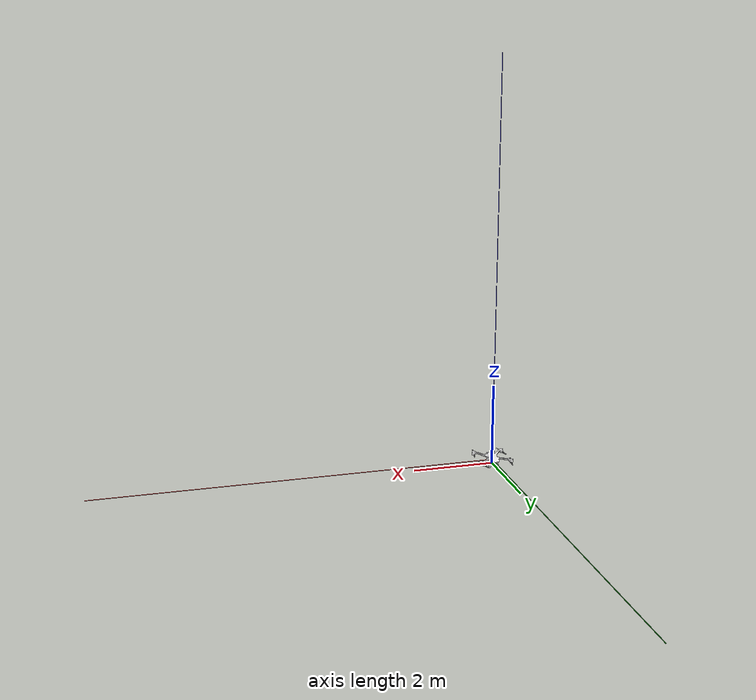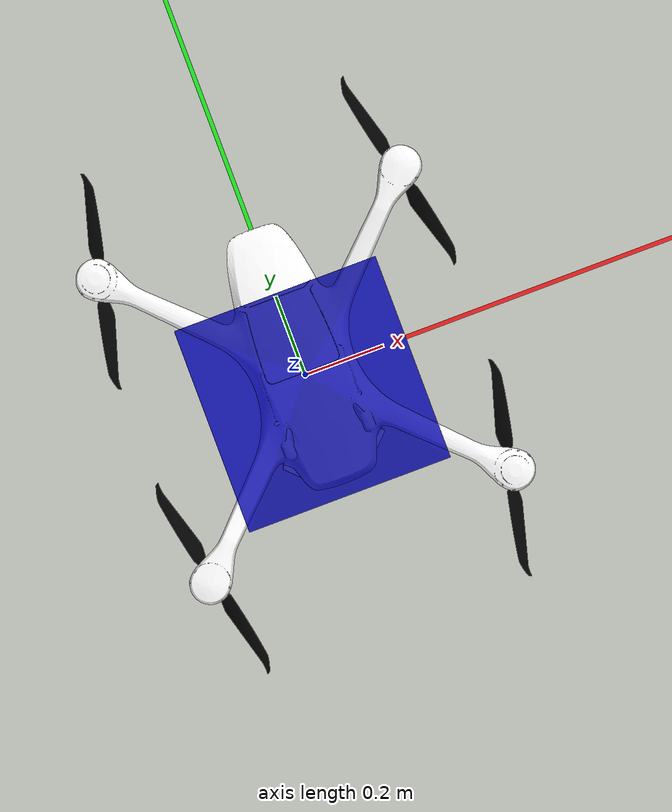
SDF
<sdf version="1.9">
 <world name="e2_runway">
  <physics name="1ms" type="ignore">
   <max_step_size>0.001</max_step_size>
   <real_time_factor>1.0</real_time_factor>
  </physics>
  <plugin filename="gz-sim-physics-system" name="gz::sim::systems::Physics"/>
  <plugin filename="gz-sim-sensors-system" name="gz::sim::systems::Sensors">
   <render_engine>ogre2</render_engine>
  </plugin>
  <plugin filename="gz-sim-user-commands-system" name="gz::sim::systems::UserCommands"/>
  <plugin filename="gz-sim-scene-broadcaster-system" name="gz::sim::systems::SceneBroadcaster"/>
  <plugin filename="gz-sim-imu-system" name="gz::sim::systems::Imu"/>
  <plugin filename="gz-sim-navsat-system" name="gz::sim::systems::NavSat"/>
  <spherical_coordinates>
   <latitude_deg>-35.363262</latitude_deg>
   <longitude_deg>149.165237</longitude_deg>
   <elevation>584</elevation>
   <heading_deg>0</heading_deg>
   <surface_model>EARTH_WGS84</surface_model>
  </spherical_coordinates>
  <light type="directional" name="sun">
   <pose>0 0 10 0 0 0</pose>
   <diffuse>0.8 0.8 0.8 1</diffuse>
   <specular>0.8 0.8 0.8 1</specular>
   <attenuation>
    <range>1000</range>
    <constant>0.9</constant>
    <linear>0.01</linear>
    <quadratic>0.001</quadratic>
   </attenuation>
   <direction>-0.5 0.1 -0.9</direction>
  </light>
  <model name="axes">
   <static>1</static>
   <link name="link">
    <visual name="r">
     <cast_shadows>0</cast_shadows>
     <pose>5 0 0.1 0 0 0</pose>
     <geometry><box><size>10 0.01 0.01</size></box></geometry>
     <material>
      <ambient>1 0 0 0.8</ambient>
      <diffuse>1 0 0 0.8</diffuse>
      <emissive>1 0 0 0.8</emissive>
      <specular>0.5 0.5 0.5 0.8</specular>
     </material>
    </visual>
    <visual name="g">
     <cast_shadows>0</cast_shadows>
     <pose>0 5 0.1 0 0 0</pose>
     <geometry><box><size>0.01 10 0.01</size></box></geometry>
     <material>
      <ambient>0 1 0 0.8</ambient>
      <diffuse>0 1 0 0.8</diffuse>
      <emissive>0 1 0 0.8</emissive>
      <specular>0.5 0.5 0.5 0.8</specular>
     </material>
    </visual>
    <visual name="b">
     <cast_shadows>0</cast_shadows>
     <pose>0 0 5.1 0 0 0</pose>
     <geometry><box><size>0.01 0.01 10</size></box></geometry>
     <material>
      <ambient>0 0 1 0.8</ambient>
      <diffuse>0 0 1 0.8</diffuse>
      <emissive>0 0 1 0.8</emissive>
      <specular>0.5 0.5 0.5 0.8</specular>
     </material>
    </visual>
    <sensor name="navsat_sensor" type="navsat"><always_on>1</always_on><update_rate>1</update_rate></sensor>
   </link>
  </model>
  <include><uri>model://skytech_e2_with_ardupilot</uri><pose degrees="true">0 0 0.195 0 0 90</pose></include>
 </world>
</sdf>

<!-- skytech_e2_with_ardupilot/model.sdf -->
<sdf version="1.9">
  <model name="iris_with_ardupilot">
    <include>
      <uri>model://skytech_e2_frame</uri>
    </include>

    <!--
      visual markers for debugging
      - blade root    - teal
      - blade tip     - orange
      - blade cp      - yellow
      - blade forward - red
      - blade upward  - blue
    -->

    <!-- plugins -->
    <plugin filename="gz-sim-joint-state-publisher-system"
      name="gz::sim::systems::JointStatePublisher">
    </plugin>
    <plugin filename="gz-sim-lift-drag-system"
        name="gz::sim::systems::LiftDrag">
      <a0>0.3</a0>
      <alpha_stall>1.4</alpha_stall>
      <cla>4.2500</cla>
      <cda>0.10</cda>
      <cma>0.0</cma>
      <cla_stall>-0.025</cla_stall>
      <cda_stall>0.0</cda_stall>
      <cma_stall>0.0</cma_stall>
      <area>0.002</area>
      <air_density>1.2041</air_density>
      <cp>0.084 0 0</cp>
      <forward>0 1 0</forward>
      <upward>0 0 1</upward>
      <link_name>skytech_e2_frame::rotor_0</link_name>
    </plugin>
    <plugin filename="gz-sim-lift-drag-system"
        name="gz::sim::systems::LiftDrag">
      <a0>0.3</a0>
      <alpha_stall>1.4</alpha_stall>
      <cla>4.2500</cla>
      <cda>0.10</cda>
      <cma>0.0</cma>
      <cla_stall>-0.025</cla_stall>
      <cda_stall>0.0</cda_stall>
      <cma_stall>0.0</cma_stall>
      <area>0.002</area>
      <air_density>1.2041</air_density>
      <cp>-0.084 0 0</cp>
      <forward>0 -1 0</forward>
      <upward>0 0 1</upward>
      <link_name>skytech_e2_frame::rotor_0</link_name>
    </plugin>

    <plugin filename="gz-sim-lift-drag-system"
        name="gz::sim::systems::LiftDrag">
      <a0>0.3</a0>
      <alpha_stall>1.4</alpha_stall>
      <cla>4.2500</cla>
      <cda>0.10</cda>
      <cma>0.0</cma>
      <cla_stall>-0.025</cla_stall>
      <cda_stall>0.0</cda_stall>
      <cma_stall>0.0</cma_stall>
      <area>0.002</area>
      <air_density>1.2041</air_density>
      <cp>0.084 0 0</cp>
      <forward>0 1 0</forward>
      <upward>0 0 1</upward>
      <link_name>skytech_e2_frame::rotor_1</link_name>
    </plugin>
    <plugin filename="gz-sim-lift-drag-system"
        name="gz::sim::systems::LiftDrag">
      <a0>0.3</a0>
      <alpha_stall>1.4</alpha_stall>
      <cla>4.2500</cla>
      <cda>0.10</cda>
      <cma>0.0</cma>
      <cla_stall>-0.025</cla_stall>
      <cda_stall>0.0</cda_stall>
      <cma_stall>0.0</cma_stall>
      <area>0.002</area>
      <air_density>1.2041</air_density>
      <cp>-0.084 0 0</cp>
      <forward>0 -1 0</forward>
      <upward>0 0 1</upward>
      <link_name>skytech_e2_frame::rotor_1</link_name>
    </plugin>

    <plugin filename="gz-sim-lift-drag-system"
        name="gz::sim::systems::LiftDrag">
      <a0>0.3</a0>
      <alpha_stall>1.4</alpha_stall>
      <cla>4.2500</cla>
      <cda>0.10</cda>
      <cma>0.0</cma>
      <cla_stall>-0.025</cla_stall>
      <cda_stall>0.0</cda_stall>
      <cma_stall>0.0</cma_stall>
      <area>0.002</area>
      <air_density>1.2041</air_density>
      <cp>0.084 0 0</cp>
      <forward>0 -1 0</forward>
      <upward>0 0 1</upward>
      <link_name>skytech_e2_frame::rotor_2</link_name>
    </plugin>
    <plugin filename="gz-sim-lift-drag-system"
        name="gz::sim::systems::LiftDrag">
      <a0>0.3</a0>
      <alpha_stall>1.4</alpha_stall>
      <cla>4.2500</cla>
      <cda>0.10</cda>
      <cma>0.0</cma>
      <cla_stall>-0.025</cla_stall>
      <cda_stall>0.0</cda_stall>
      <cma_stall>0.0</cma_stall>
      <area>0.002</area>
      <air_density>1.2041</air_density>
      <cp>-0.084 0 0</cp>
      <forward>0 1 0</forward>
      <upward>0 0 1</upward>
      <link_name>skytech_e2_frame::rotor_2</link_name>
    </plugin>

    <plugin filename="gz-sim-lift-drag-system"
        name="gz::sim::systems::LiftDrag">
      <a0>0.3</a0>
      <alpha_stall>1.4</alpha_stall>
      <cla>4.2500</cla>
      <cda>0.10</cda>
      <cma>0.0</cma>
      <cla_stall>-0.025</cla_stall>
      <cda_stall>0.0</cda_stall>
      <cma_stall>0.0</cma_stall>
      <area>0.002</area>
      <air_density>1.2041</air_density>
      <cp>0.084 0 0</cp>
      <forward>0 -1 0</forward>
      <upward>0 0 1</upward>
      <link_name>skytech_e2_frame::rotor_3</link_name>
    </plugin>
    <plugin filename="gz-sim-lift-drag-system"
        name="gz::sim::systems::LiftDrag">
      <a0>0.3</a0>
      <alpha_stall>1.4</alpha_stall>
      <cla>4.2500</cla>
      <cda>0.10</cda>
      <cma>0.0</cma>
      <cla_stall>-0.025</cla_stall>
      <cda_stall>0.0</cda_stall>
      <cma_stall>0.0</cma_stall>
      <area>0.002</area>
      <air_density>1.2041</air_density>
      <cp>-0.084 0 0</cp>
      <forward>0 1 0</forward>
      <upward>0 0 1</upward>
      <link_name>skytech_e2_frame::rotor_3</link_name>
    </plugin>

    <plugin filename="gz-sim-apply-joint-force-system"
      name="gz::sim::systems::ApplyJointForce">
      <joint_name>skytech_e2_frame::rotor_0_joint</joint_name>
    </plugin>
    <plugin filename="gz-sim-apply-joint-force-system"
      name="gz::sim::systems::ApplyJointForce">
      <joint_name>skytech_e2_frame::rotor_1_joint</joint_name>
    </plugin>
    <plugin filename="gz-sim-apply-joint-force-system"
      name="gz::sim::systems::ApplyJointForce">
      <joint_name>skytech_e2_frame::rotor_2_joint</joint_name>
    </plugin>
    <plugin filename="gz-sim-apply-joint-force-system"
      name="gz::sim::systems::ApplyJointForce">
      <joint_name>skytech_e2_frame::rotor_3_joint</joint_name>
    </plugin>

    <plugin name="ArduPilotPlugin"
      filename="ArduPilotPlugin">
      <!-- Port settings -->
      <fdm_addr>127.0.0.1</fdm_addr>
      <fdm_port_in>9002</fdm_port_in>
      <connectionTimeoutMaxCount>5</connectionTimeoutMaxCount>
      <lock_step>1</lock_step>
      <have_32_channels>0</have_32_channels>

      <!-- Frame conventions
        Require by ArduPilot: change model and gazebo from XYZ to XY-Z coordinates
      -->
      <modelXYZToAirplaneXForwardZDown degrees="true">0 0 0 180 0 0</modelXYZToAirplaneXForwardZDown>
      <gazeboXYZToNED degrees="true">0 0 0 180 0 90</gazeboXYZToNED>

      <!-- Sensors -->
      <imuName>skytech_e2_frame::imu_link::imu_sensor</imuName>

      <!--
          incoming control command [0, 1]
          so offset it by 0 to get [0, 1]
          and divide max target by 1.
          offset = 0
          multiplier = 838 max rpm / 1 = 838
        -->
      <control channel="0">
        <jointName>skytech_e2_frame::rotor_0_joint</jointName>
        <useForce>1</useForce>
        <multiplier>838</multiplier>
        <offset>0</offset>
        <servo_min>1100</servo_min>
        <servo_max>1900</servo_max>
        <type>VELOCITY</type>
        <p_gain>0.20</p_gain>
        <i_gain>0</i_gain>
        <d_gain>0</d_gain>
        <i_max>0</i_max>
        <i_min>0</i_min>
        <cmd_max>2.5</cmd_max>
        <cmd_min>-2.5</cmd_min>
        <controlVelocitySlowdownSim>1</controlVelocitySlowdownSim>
      </control>

      <control channel="1">
        <jointName>skytech_e2_frame::rotor_1_joint</jointName>
        <useForce>1</useForce>
        <multiplier>838</multiplier>
        <offset>0</offset>
        <servo_min>1100</servo_min>
        <servo_max>1900</servo_max>
        <type>VELOCITY</type>
        <p_gain>0.20</p_gain>
        <i_gain>0</i_gain>
        <d_gain>0</d_gain>
        <i_max>0</i_max>
        <i_min>0</i_min>
        <cmd_max>2.5</cmd_max>
        <cmd_min>-2.5</cmd_min>
        <controlVelocitySlowdownSim>1</controlVelocitySlowdownSim>
      </control>

      <control channel="2">
        <jointName>skytech_e2_frame::rotor_2_joint</jointName>
        <useForce>1</useForce>
        <multiplier>-838</multiplier>
        <offset>0</offset>
        <servo_min>1100</servo_min>
        <servo_max>1900</servo_max>
        <type>VELOCITY</type>
        <p_gain>0.20</p_gain>
        <i_gain>0</i_gain>
        <d_gain>0</d_gain>
        <i_max>0</i_max>
        <i_min>0</i_min>
        <cmd_max>2.5</cmd_max>
        <cmd_min>-2.5</cmd_min>
        <controlVelocitySlowdownSim>1</controlVelocitySlowdownSim>
      </control>

      <control channel="3">
        <jointName>skytech_e2_frame::rotor_3_joint</jointName>
        <useForce>1</useForce>
        <multiplier>-838</multiplier>
        <offset>0</offset>
        <servo_min>1100</servo_min>
        <servo_max>1900</servo_max>
        <type>VELOCITY</type>
        <p_gain>0.20</p_gain>
        <i_gain>0</i_gain>
        <d_gain>0</d_gain>
        <i_max>0</i_max>
        <i_min>0</i_min>
        <cmd_max>2.5</cmd_max>
        <cmd_min>-2.5</cmd_min>
        <controlVelocitySlowdownSim>1</controlVelocitySlowdownSim>
      </control>

    </plugin>

  </model>
</sdf>

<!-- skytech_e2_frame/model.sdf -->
<sdf version="1.9">
  <model name="skytech_e2_frame">
    <!-- The model is static and won't move -->

    <link name='base_link'>
      <velocity_decay>
        <linear>0.0</linear>
        <angular>0.0</angular>
      </velocity_decay>
      <inertial>
        <pose>0 0 0 0 0 0</pose>
        <mass>1.5</mass>
        <inertia>
          <ixx>0.008</ixx>
          <ixy>0</ixy>
          <ixz>0</ixz>
          <iyy>0.015</iyy>
          <iyz>0</iyz>
          <izz>0.017</izz>
        </inertia>
      </inertial>

      <!-- Collision element -->
      <collision name='base_collision'>
        <pose>0 0 -0.08 0 0 0</pose>
        <geometry>
          <box>
            <size>0.47 0.47 0.23</size>
          </box>
        </geometry>
        <surface>
          <contact>
            <ode>
              <max_vel>100.0</max_vel>
              <min_depth>0.001</min_depth>
            </ode>
          </contact>
          <friction>
            <ode>
              <mu>100000.0</mu>
              <mu2>100000.0</mu2>
            </ode>
          </friction>
        </surface>
      </collision>

      <!-- Visual element -->
      <visual name='base_visual'>
        <geometry>
          <mesh>
            <uri>model://skytech_e2_frame/meshes/skyteche2_lr0.05.stl</uri>
          </mesh>
        </geometry>
        <material>
          <ambient>1. 1. 1.</ambient>
          <diffuse>1. 1. 1.</diffuse>
          <specular>1 1 1 1</specular>
          <pbr>
            <metal>
              <metalness>0.1</metalness>
              <roughness>0.5</roughness>
            </metal>
          </pbr>
        </material>
      </visual>
    </link>

    <!-- IMU -->
    <link name='imu_link'>
      <inertial>
        <pose>0 0 0 0 0 0</pose>
        <mass>0.15</mass>
        <inertia>
          <ixx>0.00001</ixx>
          <ixy>0</ixy>
          <ixz>0</ixz>
          <iyy>0.00002</iyy>
          <iyz>0</iyz>
          <izz>0.00002</izz>
        </inertia>
      </inertial>
      <sensor name="imu_sensor" type="imu">
        <pose degrees="true">0 0 0 180 0 0</pose>
        <always_on>1</always_on>
        <update_rate>1000.0</update_rate>
      </sensor>
    </link>
    <joint name='imu_joint' type='revolute'>
      <child>imu_link</child>
      <parent>base_link</parent>
      <axis>
        <xyz>0 0 1</xyz>
        <limit>
          <lower>0</lower>
          <upper>0</upper>
          <effort>0</effort>
          <velocity>0</velocity>
        </limit>
        <dynamics>
          <damping>1.0</damping>
        </dynamics>
      </axis>
    </joint>

    <!-- ROTORS -->
    <link name='rotor_0'>
      <pose>0.36 -0.36 -0.08 0 0 0</pose>
      <inertial>
        <pose>0 0 0 0 0 0</pose>
        <mass>0.025</mass>
        <inertia>
          <ixx>9.75e-06</ixx>
          <ixy>0</ixy>
          <ixz>0</ixz>
          <iyy>0.000166704</iyy>
          <iyz>0</iyz>
          <izz>0.000167604</izz>
        </inertia>
      </inertial>
      <visual name='rotor_0_visual'>
        <pose>0 0 0 0 0 0</pose>
        <geometry>
          <mesh>
            <scale>1.75 1 1</scale>
            <uri>model://iris_with_standoffs/meshes/iris_prop_ccw.dae</uri>
          </mesh>
        </geometry>
        <material>
          <ambient>0.1 0.1 0.1</ambient>
          <diffuse>0.0 0.0 0.0</diffuse>
          <specular>1 1 1 1</specular>
          <pbr>
            <metal>
              <metalness>0.0</metalness>
              <roughness>0.5</roughness>
            </metal>
          </pbr>
        </material>
      </visual>
      <gravity>1</gravity>
      <velocity_decay/>
      <self_collide>0</self_collide>
    </link>
    <joint name='rotor_0_joint' type='revolute'>
      <child>rotor_0</child>
      <parent>base_link</parent>
      <axis>
        <xyz>0 0 1</xyz>
        <limit>
          <lower>-1e+16</lower>
          <upper>1e+16</upper>
        </limit>
        <dynamics>
          <damping>0.004</damping>
        </dynamics>
      </axis>
      <physics>
        <ode>
          <implicit_spring_damper>1</implicit_spring_damper>
        </ode>
      </physics>
    </joint>
    <link name='rotor_1'>
      <pose>-0.36 0.36 -0.08 0 0 0</pose>
      <inertial>
        <pose>0 0 0 0 0 0</pose>
        <mass>0.025</mass>
        <inertia>
          <ixx>9.75e-06</ixx>
          <ixy>0</ixy>
          <ixz>0</ixz>
          <iyy>0.000166704</iyy>
          <iyz>0</iyz>
          <izz>0.000167604</izz>
        </inertia>
      </inertial>
      <visual name='rotor_1_visual'>
        <pose>0 0 0 0 0 0</pose>
        <geometry>
          <mesh>
            <scale>1.75 1 1</scale>
            <uri>model://iris_with_standoffs/meshes/iris_prop_ccw.dae</uri>
          </mesh>
        </geometry>
        <material>
          <ambient>0.1 0.1 0.1</ambient>
          <diffuse>0.0 0.0 0.0</diffuse>
          <specular>1 1 1 1</specular>
          <pbr>
            <metal>
              <metalness>0.0</metalness>
              <roughness>0.5</roughness>
            </metal>
          </pbr>
        </material>
      </visual>
      <gravity>1</gravity>
      <velocity_decay/>
      <self_collide>0</self_collide>
    </link>
    <joint name='rotor_1_joint' type='revolute'>
      <child>rotor_1</child>
      <parent>base_link</parent>
      <axis>
        <xyz>0 0 1</xyz>
        <limit>
          <lower>-1e+16</lower>
          <upper>1e+16</upper>
        </limit>
        <dynamics>
          <damping>0.004</damping>
        </dynamics>
      </axis>
      <physics>
        <ode>
          <implicit_spring_damper>1</implicit_spring_damper>
        </ode>
      </physics>
    </joint>
    <link name='rotor_2'>
      <pose>0.36 0.36 -0.08 0 0 0</pose>
      <inertial>
        <pose>0 0 0 0 0 0</pose>
        <mass>0.025</mass>
        <inertia>
          <ixx>9.75e-06</ixx>
          <ixy>0</ixy>
          <ixz>0</ixz>
          <iyy>0.000166704</iyy>
          <iyz>0</iyz>
          <izz>0.000167604</izz>
        </inertia>
      </inertial>
      <visual name='rotor_2_visual'>
        <pose>0 0 0 0 0 0</pose>
        <geometry>
          <mesh>
            <scale>1.75 1 1</scale>
            <uri>model://iris_with_standoffs/meshes/iris_prop_cw.dae</uri>
          </mesh>
        </geometry>
        <material>
          <ambient>0.1 0.1 0.1</ambient>
          <diffuse>0.0 0.0 0.0</diffuse>
          <specular>1 1 1 1</specular>
          <pbr>
            <metal>
              <metalness>0.0</metalness>
              <roughness>0.5</roughness>
            </metal>
          </pbr>
        </material>
      </visual>
      <gravity>1</gravity>
      <velocity_decay/>
      <self_collide>0</self_collide>
    </link>
    <joint name='rotor_2_joint' type='revolute'>
      <child>rotor_2</child>
      <parent>base_link</parent>
      <axis>
        <xyz>0 0 1</xyz>
        <limit>
          <lower>-1e+16</lower>
          <upper>1e+16</upper>
        </limit>
        <dynamics>
          <damping>0.004</damping>
        </dynamics>
      </axis>
      <physics>
        <ode>
          <implicit_spring_damper>1</implicit_spring_damper>
        </ode>
      </physics>
    </joint>
    <link name='rotor_3'>
      <pose>-0.36 -0.36 -0.08 0 0 0</pose>
      <inertial>
        <pose>0 0 0 0 0 0</pose>
        <mass>0.025</mass>
        <inertia>
          <ixx>9.75e-06</ixx>
          <ixy>0</ixy>
          <ixz>0</ixz>
          <iyy>0.000166704</iyy>
          <iyz>0</iyz>
          <izz>0.000167604</izz>
        </inertia>
      </inertial>
      <visual name='rotor_3_visual'>
        <pose>0 0 0 0 0 0</pose>
        <geometry>
          <mesh>
            <scale>1.75 1 1</scale>
            <uri>model://iris_with_standoffs/meshes/iris_prop_cw.dae</uri>
          </mesh>
        </geometry>
        <material>
          <ambient>0.1 0.1 0.1</ambient>
          <diffuse>0.0 0.0 0.0</diffuse>
          <specular>1 1 1 1</specular>
          <pbr>
            <metal>
              <metalness>0.0</metalness>
              <roughness>0.5</roughness>
            </metal>
          </pbr>
        </material>
      </visual>
      <gravity>1</gravity>
      <velocity_decay/>
      <self_collide>0</self_collide>
    </link>
    <joint name='rotor_3_joint' type='revolute'>
      <child>rotor_3</child>
      <parent>base_link</parent>
      <axis>
        <xyz>0 0 1</xyz>
        <limit>
          <lower>-1e+16</lower>
          <upper>1e+16</upper>
        </limit>
        <dynamics>
          <damping>0.004</damping>
        </dynamics>
      </axis>
      <physics>
        <ode>
          <implicit_spring_damper>1</implicit_spring_damper>
        </ode>
      </physics>
    </joint>
  </model>
</sdf>
